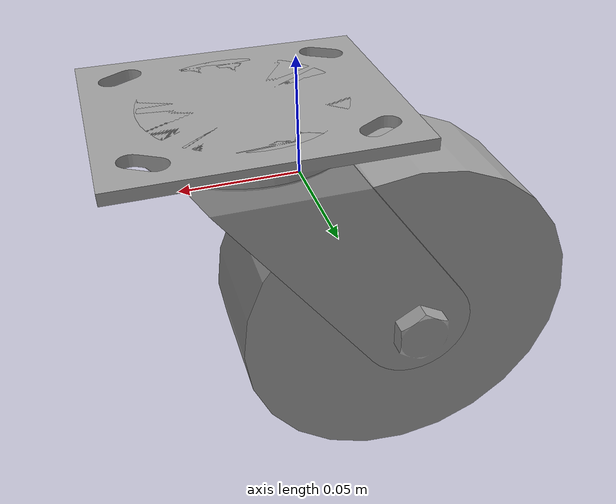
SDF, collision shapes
<?xml version='1.0'?>
<sdf version='1.6'>
  <model name='grudsby_caster'>
    <link name='base'>
      <pose frame=''>0.021189 0.000113 0.035019 0 -0 0</pose>
      <inertial>
        <mass>.05</mass>
        <inertia>
          <ixx>0</ixx>
          <ixy>0</ixy>
          <ixz>0</ixz>
          <iyy>0</iyy>
          <iyz>0</iyz>
          <izz>0</izz>
        </inertia>
        <pose frame=''>0 0 0 0 -0 0</pose>
      </inertial>
      <gravity>1</gravity>
      <self_collide>0</self_collide>
      <kinematic>0</kinematic>
      <visual name='visual'>
        <pose frame=''>0 0 0 3.14157 -0 0</pose>
        <geometry>
          <mesh>
            <uri>model://grudsby_caster/meshes/caster_base.STL</uri>
          </mesh>
        </geometry>
        <material>
          <lighting>1</lighting>
          <script>
            <uri>file://media/materials/scripts/gazebo.material</uri>
            <name>Gazebo/Grey</name>
          </script>
          <ambient>0.3 0.3 0.3 1</ambient>
          <diffuse>0.7 0.7 0.7 1</diffuse>
          <specular>0.01 0.01 0.01 1</specular>
          <emissive>0 0 0 1</emissive>
          <shader type='vertex'>
            <normal_map>__default__</normal_map>
          </shader>
        </material>
        <cast_shadows>1</cast_shadows>
        <transparency>0</transparency>
      </visual>
      <collision name='collision'>
        <laser_retro>0</laser_retro>
        <max_contacts>10</max_contacts>
        <pose frame=''>0 0 0 3.14157 -0 0</pose>
        <geometry>
          <mesh>
            <uri>model://grudsby_caster/meshes/caster_base.STL</uri>
          </mesh>
        </geometry>
        <surface>
          <friction>
            <ode>
              <mu>1</mu>
              <mu2>1</mu2>
              <fdir1>0 0 0</fdir1>
              <slip1>0</slip1>
              <slip2>0</slip2>
            </ode>
            <torsional>
              <coefficient>1</coefficient>
              <patch_radius>0</patch_radius>
              <surface_radius>0</surface_radius>
              <use_patch_radius>1</use_patch_radius>
              <ode>
                <slip>0</slip>
              </ode>
            </torsional>
          </friction>
          <bounce>
            <restitution_coefficient>0</restitution_coefficient>
            <threshold>1e+06</threshold>
          </bounce>
          <contact>
            <collide_without_contact>0</collide_without_contact>
            <collide_without_contact_bitmask>1</collide_without_contact_bitmask>
            <collide_bitmask>1</collide_bitmask>
            <ode>
              <soft_cfm>0</soft_cfm>
              <soft_erp>0.2</soft_erp>
              <kp>1e+13</kp>
              <kd>1</kd>
              <max_vel>0.01</max_vel>
              <min_depth>0</min_depth>
            </ode>
            <bullet>
              <split_impulse>1</split_impulse>
              <split_impulse_penetration_threshold>-0.01</split_impulse_penetration_threshold>
              <soft_cfm>0</soft_cfm>
              <soft_erp>0.2</soft_erp>
              <kp>1e+13</kp>
              <kd>1</kd>
            </bullet>
          </contact>
        </surface>
      </collision>
    </link>
    <link name='frame'>
      <pose frame=''>0.021189 0.000112 0.035019 0 -0 0</pose>
      <inertial>
        <mass>0.005</mass>
        <inertia>
          <ixx>0</ixx>
          <ixy>0</ixy>
          <ixz>0</ixz>
          <iyy>0</iyy>
          <iyz>0</iyz>
          <izz>0</izz>
        </inertia>
        <pose frame=''>0 0 0 0 -0 0</pose>
      </inertial>
      <gravity>1</gravity>
      <self_collide>0</self_collide>
      <kinematic>0</kinematic>
      <visual name='visual'>
        <pose frame=''>0 0 0 3.14157 -0 0</pose>
        <geometry>
          <mesh>
            <uri>model://grudsby_caster/meshes/caster_wheel_mount.STL</uri>
          </mesh>
        </geometry>
        <material>
          <lighting>1</lighting>
          <script>
            <uri>file://media/materials/scripts/gazebo.material</uri>
            <name>Gazebo/Grey</name>
          </script>
          <ambient>0.3 0.3 0.3 1</ambient>
          <diffuse>0.7 0.7 0.7 1</diffuse>
          <specular>0.01 0.01 0.01 1</specular>
          <emissive>0 0 0 1</emissive>
          <shader type='vertex'>
            <normal_map>__default__</normal_map>
          </shader>
        </material>
        <cast_shadows>1</cast_shadows>
        <transparency>0</transparency>
      </visual>
      <collision name='collision'>
        <laser_retro>0</laser_retro>
        <max_contacts>10</max_contacts>
        <pose frame=''>0 0 0 3.14157 -0 0</pose>
        <geometry>
          <mesh>
            <uri>model://grudsby_caster/meshes/caster_wheel_mount.STL</uri>
          </mesh>
        </geometry>
        <surface>
          <friction>
            <ode>
              <mu>1</mu>
              <mu2>1</mu2>
              <fdir1>.2 .2 .2</fdir1>
              <slip1>0</slip1>
              <slip2>0</slip2>
            </ode>
            <torsional>
              <coefficient>1</coefficient>
              <patch_radius>0</patch_radius>
              <surface_radius>0</surface_radius>
              <use_patch_radius>1</use_patch_radius>
              <ode>
                <slip>0</slip>
              </ode>
            </torsional>
          </friction>
          <bounce>
            <restitution_coefficient>0</restitution_coefficient>
            <threshold>1e+06</threshold>
          </bounce>
          <contact>
            <collide_without_contact>0</collide_without_contact>
            <collide_without_contact_bitmask>1</collide_without_contact_bitmask>
            <collide_bitmask>1</collide_bitmask>
            <ode>
              <soft_cfm>0</soft_cfm>
              <soft_erp>0.2</soft_erp>
              <kp>1e+13</kp>
              <kd>1</kd>
              <max_vel>0.01</max_vel>
              <min_depth>0</min_depth>
            </ode>
            <bullet>
              <split_impulse>1</split_impulse>
              <split_impulse_penetration_threshold>-0.01</split_impulse_penetration_threshold>
              <soft_cfm>0</soft_cfm>
              <soft_erp>0.2</soft_erp>
              <kp>1e+13</kp>
              <kd>1</kd>
            </bullet>
          </contact>
        </surface>
      </collision>
    </link>
    <link name='wheel'>
      <pose frame=''>-0.042377 0.000111 -0.070039 0 -0 0</pose>
      <inertial>
        <mass>0.05</mass>
        <inertia>
          <ixx>0.01</ixx>
          <ixy>0.01</ixy>
          <ixz>0.01</ixz>
          <iyy>0.01</iyy>
          <iyz>0.01</iyz>
          <izz>0.01</izz>
        </inertia>
        <pose frame=''>0 0 0 0 -0 0</pose>
      </inertial>
      <gravity>1</gravity>
      <self_collide>0</self_collide>
      <kinematic>0</kinematic>
      <visual name='visual'>
        <pose frame=''>0 0 0 0 -0 0</pose>
        <geometry>
          <mesh>
            <uri>model://grudsby_caster/meshes/caster_wheel.STL</uri>
          </mesh>
        </geometry>
        <material>
          <lighting>1</lighting>
          <script>
            <uri>file://media/materials/scripts/gazebo.material</uri>
            <name>Gazebo/Grey</name>
          </script>
          <ambient>0.3 0.3 0.3 1</ambient>
          <diffuse>0.7 0.7 0.7 1</diffuse>
          <specular>0.01 0.01 0.01 1</specular>
          <emissive>0 0 0 1</emissive>
          <shader type='vertex'>
            <normal_map>__default__</normal_map>
          </shader>
        </material>
        <cast_shadows>1</cast_shadows>
        <transparency>0</transparency>
      </visual>
      <collision name='collision'>
        <laser_retro>0</laser_retro>
        <max_contacts>10</max_contacts>
        <pose frame=''>0 0 0 1.5707 -0 0</pose>
        <geometry>
          <cylinder>
            <radius>0.077</radius>
            <length>0.055</length>
          </cylinder>
        </geometry>
        <surface>
          <friction>
            <ode>
              <mu>0.50</mu>
              <mu2>0.5</mu2>
              <fdir1>0.3 0.3 0.3</fdir1>
              <slip1>0.2</slip1>
              <slip2>0.2</slip2>
            </ode>
            <torsional>
              <coefficient>0</coefficient>
              <patch_radius>0</patch_radius>
              <surface_radius>0</surface_radius>
              <use_patch_radius>1</use_patch_radius>
              <ode>
                <slip>0</slip>
              </ode>
            </torsional>
          </friction>
          <bounce>
            <restitution_coefficient>0</restitution_coefficient>
            <threshold>1e+06</threshold>
          </bounce>
          <contact>
            <collide_without_contact>0</collide_without_contact>
            <collide_without_contact_bitmask>1</collide_without_contact_bitmask>
            <collide_bitmask>1</collide_bitmask>
            <ode>
              <soft_cfm>0</soft_cfm>
              <soft_erp>0.2</soft_erp>
              <kp>1e+13</kp>
              <kd>1</kd>
              <max_vel>0.01</max_vel>
              <min_depth>0</min_depth>
            </ode>
            <bullet>
              <split_impulse>1</split_impulse>
              <split_impulse_penetration_threshold>-0.01</split_impulse_penetration_threshold>
              <soft_cfm>0</soft_cfm>
              <soft_erp>0.2</soft_erp>
              <kp>1e+13</kp>
              <kd>1</kd>
            </bullet>
          </contact>
        </surface>
      </collision>
    </link>
    <joint name='base_frame_joint' type='revolute'>
      <parent>base</parent>
      <child>frame</child>
      <pose frame=''>0 0 0 0 -0 0</pose>
      <axis>
        <xyz>0 0 1</xyz>
        <use_parent_model_frame>0</use_parent_model_frame>
        <limit>
          <effort>-1</effort>
          <velocity>-1</velocity>
        </limit>
        <dynamics>
          <spring_reference>0</spring_reference>
          <spring_stiffness>.7</spring_stiffness>
          <damping>0</damping>
          <friction>0</friction>
        </dynamics>
      </axis>
      <physics>
        <ode>
          <limit>
            <cfm>0</cfm>
            <erp>0</erp>
          </limit>
          <suspension>
            <cfm>0</cfm>
            <erp>0</erp>
          </suspension>
        </ode>
      </physics>
    </joint>
    <joint name='frame_wheel_joint' type='revolute'>
      <parent>frame</parent>
      <child>wheel</child>
      <pose frame=''>0 0 0 0 -0 0</pose>
      <axis>
        <xyz>0 1 0</xyz>
        <use_parent_model_frame>0</use_parent_model_frame>
        <limit>
          <effort>-1</effort>
          <velocity>-1</velocity>
        </limit>
        <dynamics>
          <spring_reference>0</spring_reference>
          <spring_stiffness>0</spring_stiffness>
          <damping>0</damping>
          <friction>0</friction>
        </dynamics>
      </axis>
      <physics>
        <ode>
          <limit>
            <cfm>0</cfm>
            <erp>0</erp>
          </limit>
          <suspension>
            <cfm>0</cfm>
            <erp>0</erp>
          </suspension>
        </ode>
      </physics>
    </joint>
    <static>0</static>
    <allow_auto_disable>1</allow_auto_disable>
  </model>
</sdf>
